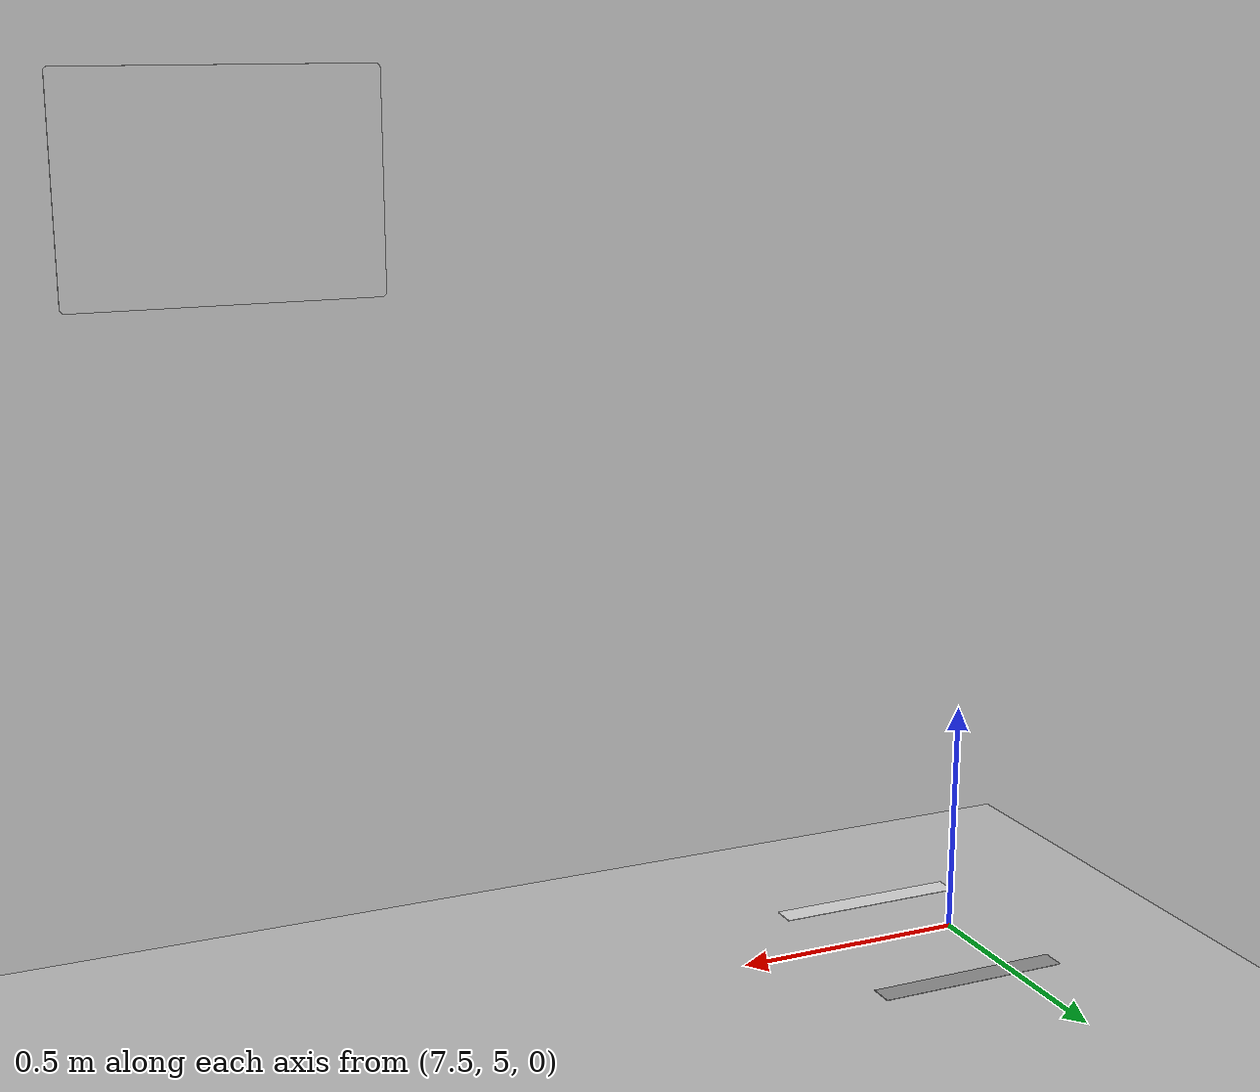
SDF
<sdf version="1.6">
 <world name="default">
  <model name="ground_plane">
   <static>1</static>
   <link name="link">
    <collision name="collision">
     <geometry><plane><normal>0 0 1</normal><size>100 100</size></plane></geometry>
     <surface><friction><ode><mu>100</mu><mu2>50</mu2></ode></friction></surface>
    </collision>
    <visual name="visual">
     <cast_shadows>0</cast_shadows>
     <geometry><plane><normal>0 0 1</normal><size>100 100</size></plane></geometry>
     <material>
      <script><uri>file://media/materials/scripts/gazebo.material</uri><name>Gazebo/Grey</name></script>
     </material>
    </visual>
   </link>
  </model>
  <model name="whiteLine_42_5">
   <link name="link_3">
    <inertial>
     <mass>1</mass>
     <inertia>
      <ixx>0.166667</ixx>
      <ixy>0</ixy>
      <ixz>0</ixz>
      <iyy>0.166667</iyy>
      <iyz>0</iyz>
      <izz>0.166667</izz>
     </inertia>
    </inertial>
    <visual name="visual">
     <pose>-0.21 0 0 0 -0 0</pose>
     <geometry><box><size>0.05 0.42 0.001</size></box></geometry>
     <material>
      <lighting>1</lighting>
      <script><uri>file://media/materials/scripts/gazebo.material</uri><name>Gazebo/White</name></script>
      <shader type="pixel"><normal_map>__default__</normal_map></shader>
      <ambient>1 1 1 1</ambient>
      <diffuse>1 1 1 1</diffuse>
      <specular>0.01 0.01 0.01 1</specular>
      <emissive>0 0 0 1</emissive>
     </material>
    </visual>
    <visual name="ModelPreview_7::link_3::visual_1">
     <pose>0.21 0 0 0 -0 0</pose>
     <geometry><box><size>0.05 0.42 0.001</size></box></geometry>
     <material>
      <lighting>1</lighting>
      <script><uri>file://media/materials/scripts/gazebo.material</uri><name>Gazebo/Grey</name></script>
      <shader type="pixel"><normal_map>__default__</normal_map></shader>
      <ambient>1 1 1 1</ambient>
      <diffuse>1 1 1 1</diffuse>
      <specular>0.01 0.01 0.01 1</specular>
      <emissive>0 0 0 1</emissive>
     </material>
    </visual>
    <collision name="collision">
     <pose>-0.21 0 0 0 -0 0</pose>
     <geometry><box><size>0.05 0.42 1e-05</size></box></geometry>
    </collision>
    <collision name="collision_1">
     <pose>0.21 0 0 0 -0 0</pose>
     <geometry><box><size>0.05 0.42 1e-05</size></box></geometry>
    </collision>
   </link>
   <static>1</static>
   <pose>7.6 5.02196 0 0 -0 1.5708</pose>
  </model>
  <model name="60x45sign">
   <link name="link_0">
    <inertial>
     <mass>1</mass>
     <inertia>
      <ixx>0.166667</ixx>
      <ixy>0</ixy>
      <ixz>0</ixz>
      <iyy>0.166667</iyy>
      <iyz>0</iyz>
      <izz>0.166667</izz>
     </inertia>
    </inertial>
    <visual name="visual">
     <pose>-0.3 0 -0.225 0 -0 0</pose>
     <geometry><mesh><uri>model://60x45sign/model/model.dae</uri><scale>2 1 2</scale></mesh></geometry>
     <material><lighting>1</lighting></material>
    </visual>
    <collision name="collision"><geometry><box><size>0.6 0.005 0.45</size></box></geometry></collision>
   </link>
   <static>1</static>
   <pose>9 4.88 1.65 0 -0 3.1415</pose>
  </model>
 </world>
</sdf>
